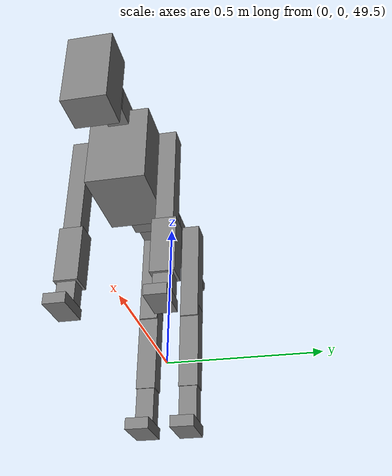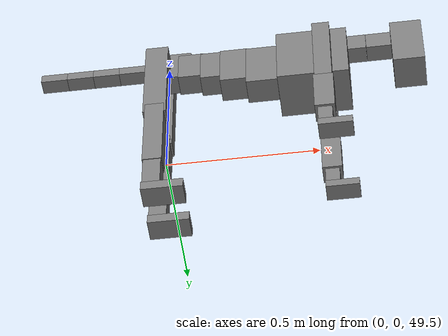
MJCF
<mujoco model="dog">

    <default>
        <joint armature="0.02" stiffness="1" damping="0.2" limited="true"/>
        <geom condim="3" friction="1 0.05 0.05" margin="0.01"/>
        <motor ctrllimited="true" ctrlrange="-1.0 1.0" forcelimited="true" gear="50"/>
    </default>

    <compiler inertiafromgeom="true" angle="radian"/>

    <option timestep="0.016" iterations="50" tolerance="1e-10" solver="Newton" jacobian="dense" cone="pyramidal"/>

    <size nconmax="20000" njmax="60000" nstack="5000000"/>
    <visual>
        <map force="0.1" zfar="30"/>
        <rgba haze="0.15 0.25 0.35 1"/>
        <quality shadowsize="2048"/>
        <global offwidth="800" offheight="800"/>
    </visual>

    <asset>
        <texture type="skybox" builtin="gradient" rgb1="0.3 0.5 0.7" rgb2="0 0 0" width="512" height="512"/>
        <texture name="texplane" type="2d" builtin="checker" rgb1=".2 .3 .4" rgb2=".1 0.15 0.2" width="512" height="512"
                 mark="cross" markrgb=".8 .8 .8"/>
        <texture name="texgeom" type="cube" builtin="flat" mark="cross" width="127" height="1278" rgb1="0.8 0.6 0.4"
                 rgb2="0.8 0.6 0.4" markrgb="1 1 1" random="0.01"/>

        <material name="matplane" reflectance="0.3" texture="texplane" texrepeat="1 1" texuniform="true"/>
        <material name="matgeom" texture="texgeom" texuniform="true" rgba="0.8 0.6 .4 1"/>
    </asset>

    <worldbody>
        <geom name="floor" pos="0 0 0" size="0 0 .25" type="plane" material="matplane" condim="3"/>

        <light directional="false" diffuse=".2 .2 .2" specular="0 0 0" pos="0 0 5" dir="0 0 -1" castshadow="false"/>
        <light mode="targetbodycom" target="torso" directional="false" diffuse=".8 .8 .8" specular="0.3 0.3 0.3"
               pos="0 0 4.0" dir="0 0 -1"/>

        <body name="root" pos="0 0 50">
            <freejoint name="root_1"/>
            <geom type="box" pos="0 0 -0.02" size="0.0774  0.0358  0.063" density="2030"/>

            <body name="spine1" pos="0.054 0 0">
                <joint name="spine1_y" axis="0 1 0" range="0 0.7" limited="true"/>
                <geom type="box" pos="0.02375 0 -0.03" size="0.04375  0.0375  0.05985" density="2030"/>

                <body name="spine2" pos="0.0612 0 0">
                    <joint name="spine2_y" axis="0 1 0" range="-0.15 0.15" limited="true"/>
                    <geom type="box" pos="0.03555  0  -0.04" size="0.04055  0.039  0.06615" density="2030"/>

                    <body name="spine3" pos="0.0730 0 0">
                        <joint name="spine3_y" axis="0 1 0" range="-0.15 0.15" limited="true"/>
                        <geom type="box" pos="0.03555  0  -0.057" size="0.04555  0.0445  0.081" density="2030"/>

                        <body name="spine4" pos="0.0780 0 0">
                            <joint name="spine4_y" axis="0 1 0" range="-0.15 0.15" limited="true"/>
                            <geom type="box" pos="0.05265  0  -0.07" size="0.05265  0.045  0.09135" density="2030"/>

                            <body name="torso" pos="0.1082 0 0">
                                <joint name="torso_y" axis="0 1 0" range="-0.15 0.15" limited="true"/>
                                <geom type="box" pos="0.11925  0  -0.085" size="0.11925  0.085  0.11745"
                                      density="2030"/>

                                <body name="neck1" pos="0.2160  0   0.0180">
                                    <joint name="neck1_y" axis="0 1 0" range="-1.2  -1" limited="true"/>
                                    <geom type="box" pos="0.0423  0  0" size="0.0423  0.03  0.036" density="2325"/>

                                    <body name="neck2" pos="0.0853  0  0">
                                        <joint name="neck2_y" axis="0 1 0" range="0.1  0" limited="true"/>
                                        <geom type="box" pos="0.0423  0  0" size="0.0423  0.03  0.036" density="2325"/>

                                        <body name="head" pos="0.0853  0  0">
                                            <joint name="head_y" axis="0 1 0" range="-0.3  -0.2" limited="true"/>
                                            <geom type="box" pos="0.0531  0  -0.055" size="0.0531  0.06  0.1044"
                                                  density="4030"/>

                                        </body>
                                    </body>
                                </body>

                                <body name="front_shoulder" pos="0.156  0   -0.0480">
                                    <joint name="front_shoulder_y" axis="0 1 0" range="-1 1.5" limited="true"/>
                                    <geom type="box" pos="0 0.13 -0.1319" size="0.0290  0.0247  0.1585" density="1158"/>
                                    <geom type="box" pos="0 -0.13 -0.1319" size="0.0290  0.0247  0.1585"
                                          density="1158"/>

                                    <body name="front_elbow" pos="0  0  -0.2637">
                                        <joint name="front_elbow_y" axis="0 1 0" range="-2 0" limited="true"/>
                                        <geom type="box" pos="0 0.13 -0.0803" size="0.0327  0.0335  0.0803"
                                              density="1081"/>
                                        <geom type="box" pos="0 -0.13 -0.0803" size="0.0327  0.0335  0.0803"
                                              density="1081"/>

                                        <body name="front_wrist" pos="0  0  -0.1605">
                                            <joint name="front_wrist_y" axis="0 1 0" range="-0.2 0" limited="true"/>
                                            <geom type="box" pos="0 0.13 -0.0386" size="0.0236  0.0262  0.0517"
                                                  density="1664"/>
                                            <geom type="box" pos="0 -0.13 -0.0386" size="0.0236  0.0262  0.0517"
                                                  density="1664"/>

                                            <body name="front_finger_end" pos="0  0  -0.0772">
                                                <joint name="front_finger_y" axis="0 1 0" range="-0.4 1"
                                                       limited="true"/>
                                                <geom type="box" pos="0.0302  0.13  0.0002"
                                                      size="0.0554  0.0302  0.0148" density="1515"/>
                                                <geom type="box" pos="0.0302  -0.13  0.0002"
                                                      size="0.0554  0.0302  0.0148" density="1515"/>

                                            </body>

                                        </body>
                                    </body>
                                </body>

                            </body>
                        </body>
                    </body>
                </body>
            </body>

            <body name="back_hip" pos="-0.03 0 -0.018">
                <joint name="back_hip_y" axis="0 1 0" range="-1.5 0.3" limited="true"/>
                <geom type="box" pos="0 0.07 -0.1496" size="0.0381  0.0299  0.1724" density="1154"/>
                <geom type="box" pos="0 -0.07 -0.1496" size="0.0381  0.0299  0.1724" density="1154"/>

                <body name="back_knee" pos="0  0  -0.2993">
                    <joint name="back_knee_y" axis="0 1 0" range="0 2.8" limited="true"/>
                    <geom type="box" pos="0 0.07 -0.1244" size="0.0316  0.0312  0.1399" density="1227"/>
                    <geom type="box" pos="0 -0.07 -0.1244" size="0.0316  0.0312  0.1399" density="1227"/>

                    <body name="back_ankle" pos="0  0  -0.2487">
                        <joint name="back_ankle_y" axis="0 1 0" range="-2.2 0" limited="true"/>
                        <geom type="box" pos="0 0.07 -0.0733" size="0.0288  0.0288  0.0845" density="1284"/>
                        <geom type="box" pos="0 -0.07 -0.0733" size="0.0288  0.0288  0.0845" density="1284"/>

                        <body name="back_toe_end" pos="0  0  -0.1465">
                            <joint name="back_toe_y" axis="0 1 0" range="-0.4 1" limited="true"/>
                            <geom type="box" pos="0.0367  0.07  -0.0025" size="0.0673  0.0367  0.0175" density="1515"/>
                            <geom type="box" pos="0.0367  -0.07  -0.0025" size="0.0673  0.0367  0.0175" density="1515"/>

                        </body>
                    </body>
                </body>
            </body>

            <body name="tail1" pos="-0.074 0 -0.006">
                <joint name="tail1_y" axis="0 1 0" range="-0.2 0.2" limited="true"/>
                <geom type="box" pos="-0.0536  0  0" size="0.045  0.025  0.0175" density="1587"/>

                <body name="tail2" pos="-0.09 0 0">
                    <joint name="tail2_y" axis="0 1 0" range="-0.2 0.2" limited="true"/>
                    <geom type="box" pos="-0.0536  0  0" size="0.045  0.025  0.0175" density="1587"/>

                    <body name="tail3" pos="-0.09 0 0">
                        <joint name="tail3_y" axis="0 1 0" range="-0.2 0.2" limited="true"/>
                        <geom type="box" pos="-0.0536  0  0" size="0.045  0.025  0.0175" density="1587"/>

                        <body name="tail4" pos="-0.09 0 0">
                            <joint name="tail4_y" axis="0 1 0" range="-0.2 0.2" limited="true"/>
                            <geom type="box" pos="-0.0536  0  0" size="0.045  0.025  0.0175" density="1587"/>

                        </body>
                    </body>
                </body>
            </body>
        </body>
    </worldbody>

    <actuator>
        <motor joint="spine1_y" forcerange="-150 150     "/>
        <motor joint="spine2_y" forcerange="-150 150     "/>
        <motor joint="spine3_y" forcerange="-150 150     "/>
        <motor joint="spine4_y" forcerange="-150 150     "/>
        <motor joint="torso_y" forcerange="-150 150     "/>
        <motor joint="neck1_y" forcerange="-100 100       "/>
        <motor joint="neck2_y" forcerange="-100 100       "/>
        <motor joint="head_y" forcerange="-150 150       "/>
        <motor joint="front_shoulder_y" forcerange="-101.66 163.32"/>
        <motor joint="front_elbow_y" forcerange="-169.25 174.08"/>
        <motor joint="front_wrist_y" forcerange="-131.89 77.85"/>
        <motor joint="front_finger_y" forcerange="-90.44 30.77"/>
        <motor joint="back_hip_y" forcerange="-312.23 285.87"/>
        <motor joint="back_knee_y" forcerange="-344.90 308.86"/>
        <motor joint="back_angle_y" forcerange="-242.43 118.91"/>
        <motor joint="back_toe_y" forcerange="-133.12 80.71"/>
        <motor joint="tail1_y" forcerange="-50 50     "/>
        <motor joint="tail2_y" forcerange="-50 50     "/>
        <motor joint="tail3_y" forcerange="-50 50     "/>
        <motor joint="tail4_y" forcerange="-50 50     "/>
    </actuator>
</mujoco>
